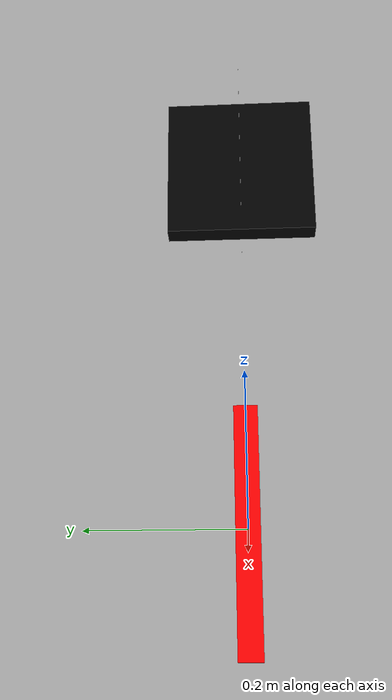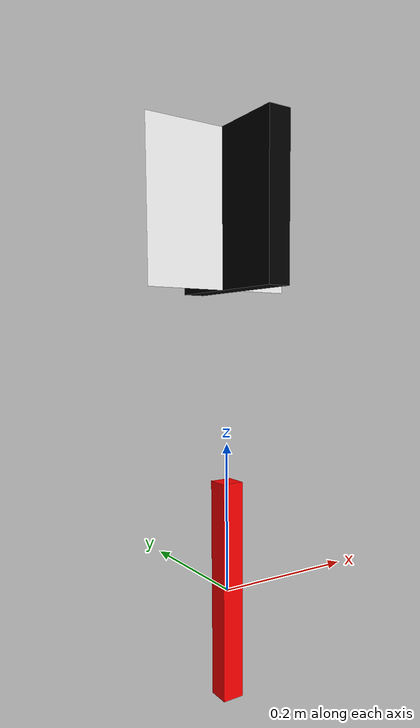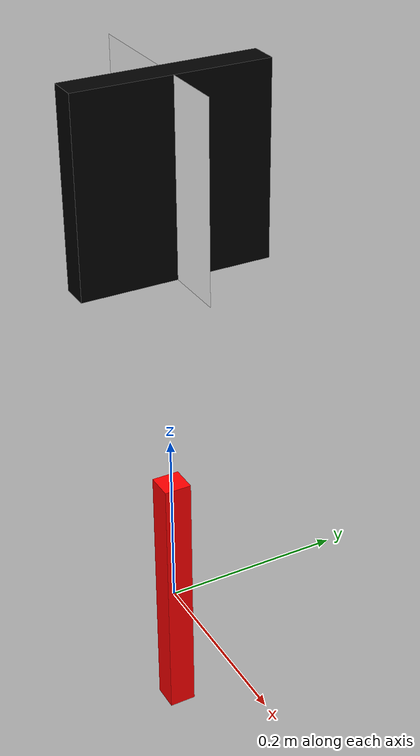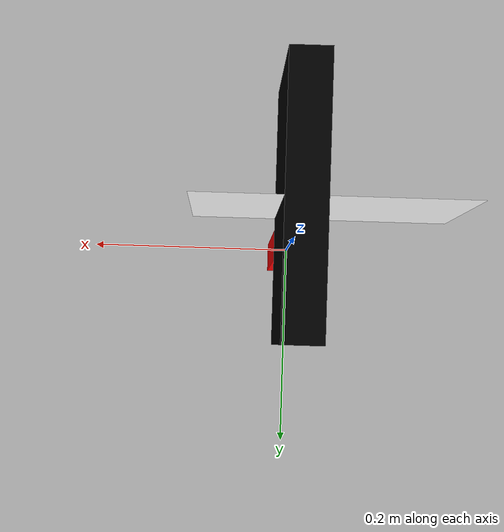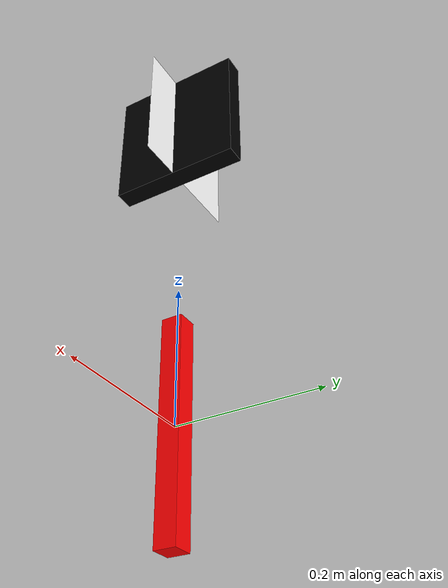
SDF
<?xml version='1.0'?>
<sdf version='1.6'>
  <model name='holder8'>
    <link name='base_link'>
      <inertial>
        <mass>100</mass>
        <inertia>
          <ixx>0.166667</ixx>
          <ixy>0</ixy>
          <ixz>0</ixz>
          <iyy>0.166667</iyy>
          <iyz>0</iyz>
          <izz>0.166667</izz>
        </inertia>
      </inertial>
      <pose frame=''>0 -2e-06 0 0 -0 0</pose>
      <visual name='visual'>
        <pose frame=''>0 0 0 0 -0 0</pose>
       <geometry>
          <box>
           <size>0.03 0.03 0.3</size>
          </box>
        </geometry>
  <material>
    <ambient>0.3607 0.2 0.0901 1</ambient>
    <diffuse>1 0 0 1</diffuse>
    <specular>0.1 0.1 0.1 1</specular>
    <emissive>0 0 0 0</emissive>
  </material>
        <transparency>0</transparency>
        <cast_shadows>1</cast_shadows>
      </visual>
      <collision name='collision'>
        <laser_retro>0</laser_retro>
        <max_contacts>10</max_contacts>
        <pose frame=''>0 0 0 0 -0 0</pose>
       <geometry>
          <box>
            <size>0.03 0.03 0.3</size>
          </box>
        </geometry>

        <surface>
          <friction>
            <ode>
              <mu>1</mu>
              <mu2>1</mu2>
              <fdir1>0 0 0</fdir1>
              <slip1>0</slip1>
              <slip2>0</slip2>
            </ode>
            <torsional>
              <coefficient>1</coefficient>
              <patch_radius>0</patch_radius>
              <surface_radius>0</surface_radius>
              <use_patch_radius>1</use_patch_radius>
              <ode>
                <slip>0</slip>
              </ode>
            </torsional>
          </friction>
          <bounce>
            <restitution_coefficient>0</restitution_coefficient>
            <threshold>1e+06</threshold>
          </bounce>
          <contact>
            <collide_without_contact>0</collide_without_contact>
            <collide_without_contact_bitmask>1</collide_without_contact_bitmask>
            <collide_bitmask>1</collide_bitmask>
            <ode>
              <soft_cfm>0</soft_cfm>
              <soft_erp>0.2</soft_erp>
              <kp>1e+13</kp>
              <kd>1</kd>
              <max_vel>0.01</max_vel>
              <min_depth>0</min_depth>
            </ode>
            <bullet>
              <split_impulse>1</split_impulse>
              <split_impulse_penetration_threshold>-0.01</split_impulse_penetration_threshold>
              <soft_cfm>0</soft_cfm>
              <soft_erp>0.2</soft_erp>
              <kp>1e+13</kp>
              <kd>1</kd>
            </bullet>
          </contact>
        </surface>
      </collision>
    </link>

<link name='april'>
      <inertial>
        <mass>1</mass>
        <inertia>
          <ixx>0.166667</ixx>
          <ixy>0</ixy>
          <ixz>0</ixz>
          <iyy>0.166667</iyy>
          <iyz>0</iyz>
          <izz>0.166667</izz>
        </inertia>
      </inertial>
      <pose frame=''>0 -2e-06 0 0 -0 0</pose>
      <visual name='visual'>
         <pose>-0.01 0 0.50 1.5707 0 0</pose>
        <geometry>
          <mesh>
            <uri>model://artag8/meshes/artag8.dae</uri>
            <scale>1 1 1</scale>
          </mesh>
        </geometry>
         <material>
              <script>
                  <uri>model://artag8/materials/scripts</uri>
                  <uri>model://artag8/materials/textures</uri>
                  <name>ArTag8/Marker</name>
              </script>
       <ambient>1 1 1 1</ambient>
       <diffuse>1 1 1 1</diffuse>
       <specular>0 0 0 1</specular>
       <emissive>1 1 1 0</emissive>
       <shader type='vertex'>
         <normal_map>__default__</normal_map>
       </shader>
     </material>
        <transparency>0</transparency>
        <cast_shadows>1</cast_shadows>
      </visual>
      <collision name='collision'>
        <laser_retro>0</laser_retro>
        <max_contacts>10</max_contacts>
          <pose>0.01 0 0.50 0 0 0</pose>
        <geometry>
          <mesh>
            <uri>model://artag8/meshes/artag8.dae</uri>
            <scale>1 1 1</scale>
          </mesh>
        </geometry>
        <surface>
          <friction>
            <ode>
              <mu>1</mu>
              <mu2>1</mu2>
              <fdir1>0 0 0</fdir1>
              <slip1>0</slip1>
              <slip2>0</slip2>
            </ode>
            <torsional>
              <coefficient>1</coefficient>
              <patch_radius>0</patch_radius>
              <surface_radius>0</surface_radius>
              <use_patch_radius>1</use_patch_radius>
              <ode>
                <slip>0</slip>
              </ode>
            </torsional>
          </friction>
          <bounce>
            <restitution_coefficient>0</restitution_coefficient>
            <threshold>1e+06</threshold>
          </bounce>
          <contact>
            <collide_without_contact>0</collide_without_contact>
            <collide_without_contact_bitmask>1</collide_without_contact_bitmask>
            <collide_bitmask>1</collide_bitmask>
            <ode>
              <soft_cfm>0</soft_cfm>
              <soft_erp>0.2</soft_erp>
              <kp>1e+13</kp>
              <kd>1</kd>
              <max_vel>0.01</max_vel>
              <min_depth>0</min_depth>
            </ode>
            <bullet>
              <split_impulse>1</split_impulse>
              <split_impulse_penetration_threshold>-0.01</split_impulse_penetration_threshold>
              <soft_cfm>0</soft_cfm>
              <soft_erp>0.2</soft_erp>
              <kp>1e+13</kp>
              <kd>1</kd>
            </bullet>
          </contact>
        </surface>
      </collision>
    </link>

      <joint type="fixed" name="april_joint">
        <pose>0 0 0 0 0 0</pose>
        <child>april</child>
        <parent>base_link</parent>
        <axis>
          <xyz>0 0 0</xyz>
        </axis>
      </joint>

<link name='april_cover'>
      <inertial>
        <mass>1</mass>
        <inertia>
          <ixx>0.166667</ixx>
          <ixy>0</ixy>
          <ixz>0</ixz>
          <iyy>0.166667</iyy>
          <iyz>0</iyz>
          <izz>0.166667</izz>
        </inertia>
      </inertial>
      <pose frame=''>0 -2e-06 0 0 -0 0</pose>
      <visual name='visual'>
         <pose>0.01 0 0.50 0 0 0</pose>
       <geometry>
          <box>
            <size>0.03 0.2 0.2</size>
          </box>
        </geometry>

  <material>
    <ambient>0 0 0 1</ambient>
    <diffuse>0 0 0 1</diffuse>
    <specular>0 0 0 1</specular>
    <emissive>0 0 0 0</emissive>
       <shader type='vertex'>
         <normal_map>__default__</normal_map>
       </shader>
     </material>
        <transparency>0</transparency>
        <cast_shadows>1</cast_shadows>
      </visual>
      <collision name='collision'>
        <laser_retro>0</laser_retro>
        <max_contacts>10</max_contacts>
          <pose>0.01 0 0.50 0 0 0</pose>
       <geometry>
          <box>
            <size>0.03 0.2 0.2</size>
          </box>
        </geometry>
        <surface>
          <friction>
            <ode>
              <mu>1</mu>
              <mu2>1</mu2>
              <fdir1>0 0 0</fdir1>
              <slip1>0</slip1>
              <slip2>0</slip2>
            </ode>
            <torsional>
              <coefficient>1</coefficient>
              <patch_radius>0</patch_radius>
              <surface_radius>0</surface_radius>
              <use_patch_radius>1</use_patch_radius>
              <ode>
                <slip>0</slip>
              </ode>
            </torsional>
          </friction>
          <bounce>
            <restitution_coefficient>0</restitution_coefficient>
            <threshold>1e+06</threshold>
          </bounce>
          <contact>
            <collide_without_contact>0</collide_without_contact>
            <collide_without_contact_bitmask>1</collide_without_contact_bitmask>
            <collide_bitmask>1</collide_bitmask>
            <ode>
              <soft_cfm>0</soft_cfm>
              <soft_erp>0.2</soft_erp>
              <kp>1e+13</kp>
              <kd>1</kd>
              <max_vel>0.01</max_vel>
              <min_depth>0</min_depth>
            </ode>
            <bullet>
              <split_impulse>1</split_impulse>
              <split_impulse_penetration_threshold>-0.01</split_impulse_penetration_threshold>
              <soft_cfm>0</soft_cfm>
              <soft_erp>0.2</soft_erp>
              <kp>1e+13</kp>
              <kd>1</kd>
            </bullet>
          </contact>
        </surface>
      </collision>
    </link>

      <joint type="fixed" name="april_cover_joint">
        <pose>0 0 0 0 0 0</pose>
        <child>april_cover</child>
        <parent>base_link</parent>
        <axis>
          <xyz>0 0 0</xyz>
        </axis>
      </joint>

    <static>0</static>
    <allow_auto_disable>1</allow_auto_disable>
  </model>
</sdf>
